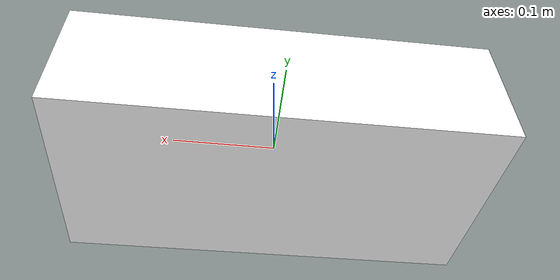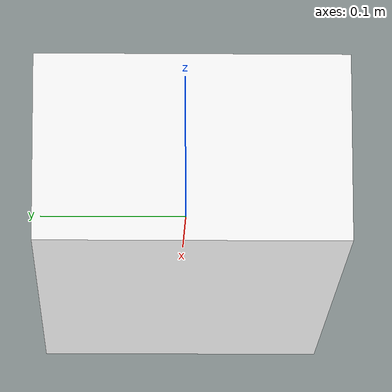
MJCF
<mujoco model="dubins">
  <compiler coordinate="local" inertiafromgeom="true"/>
  <default>
    <joint damping="0.2"/>
    <geom contype="3" conaffinity="3" friction="0 0 0" rgba="0.7 0.7 0 1"/>
  </default>
  <option gravity="0 0 -9.81" integrator="Euler" timestep="0.05"/>
  <size nstack="3000"/>
  <worldbody>
<!--    camera oriented to look head on onto the x-y plane-->
    <camera name="rgb" mode="fixed" pos="0 0 4" quat="1 0 0 0"/>
    <body name="dubins" pos="0 0 0">
      <joint name="posx" type="slide" axis="1 0 0" limited="true" margin="0.01" pos="0 0 0" range="-3 3"/>
      <joint name="posy" type="slide" axis="0 1 0" limited="true" margin="0.01" pos="0 0 0" range="-3 3"/>
<!--      A joint to update the heading of the car's geometry-->
      <joint name="heading" type="hinge" axis="0 0 1" pos="0 0 0"/>
<!--      Size along z does not matter for this simple model but should be kept small to avoid large shadows-->
      <geom name="gdubins" type="box" size="0.2 0.1 0.06" pos="0 0 0" rgba="1 1 1 1"/>
    </body>
  </worldbody>
  <!--  gym interface seems to need some control albeit dummy-->
  <actuator>
<!--    We still need an actuator to wrap it in a gym env so dummy motor below always actuated with 0.0 in env-->
    <motor joint="posx" name="dummy" ctrllimited="true" ctrlrange="-1 1" gear="40"/>
  </actuator>
</mujoco>
